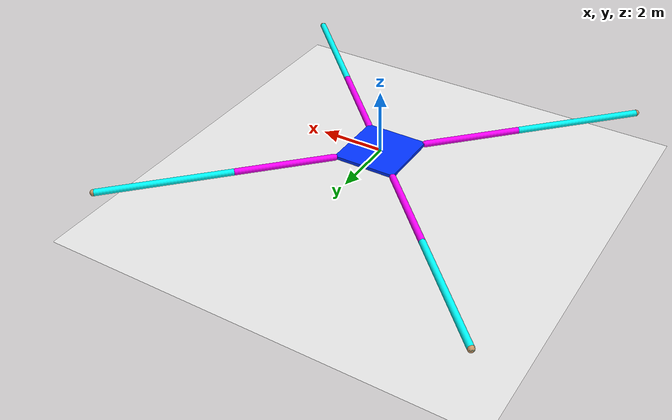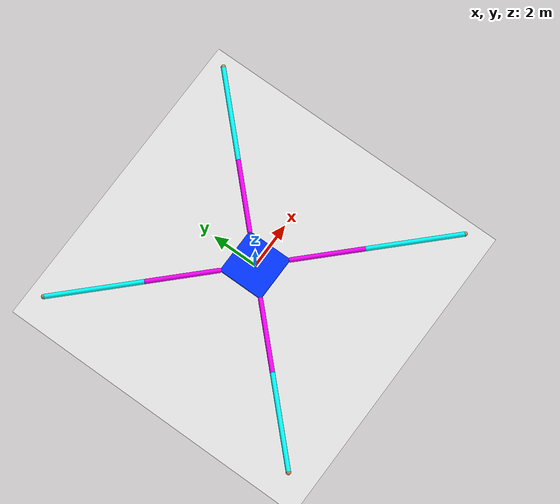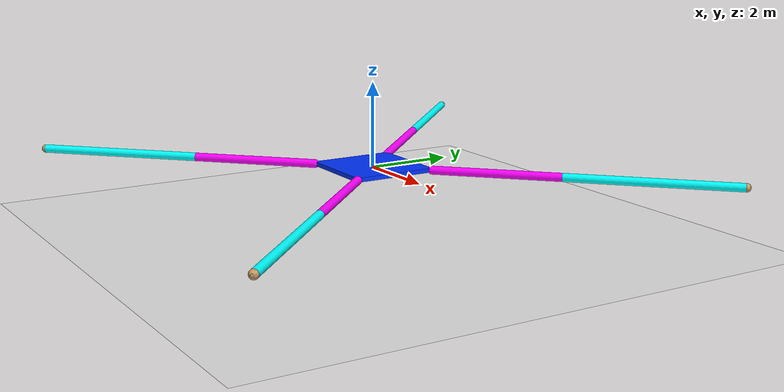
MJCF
<mujoco model="example">
  <default>
    <geom rgba=".8 .6 .4 1"/>
  </default>

  <asset>
    <texture type="skybox" builtin="gradient" rgb1="1 1 1" rgb2=".6 .8 1" width="256" height="256"/>
  </asset>

  <worldbody>
    <light pos="0 1 1" dir="0 -1 -1" diffuse="1 1 1"/>

    <body pos = "0 0 -1.5">
      <geom type="plane" size="10 10 0.1" rgba="0.9 0.9 0.9 1" friction = "2"/>
    </body>

    <!-- Spider Body -->
    <body pos = "0 0 0">
      <joint type = "free"/>
      <geom type = "box" size = "1 1 0.05" rgba = "0 0.2 1 1" mass = "0.4"/>

      <!-- Front Right Leg-->
      <body pos = "1 1 0" axisangle = "0 0 1 -45">
        <joint axis = "0 0 1" range = "-135 135" name = "FR z" damping = "20"/>
        <joint axis = "1 0 0" range = "-135 170" name = "FR shoulder" damping = "20"/>
        <geom type = "capsule" size = "0.1" fromto ="0 0 0  0 3 0" rgba = "1 0 1 1" mass = "0.05"/>
        <body pos = "0 3 0" axisangle = "0 0 1 90">
          <joint axis = "0 -1 0" range = "-170 170" name = "FR knee" damping = "20"/>
          <geom type = "capsule" size = "0.1" fromto ="0 0 0  4 0 0" rgba = "0 1 1 1" mass = "0.03" friction = "3.5"/>
          <body pos = "4 0 0"  name =  "FR foot" >
            <geom type = "sphere" size = "0.101" mass = "0" contype="0" conaffinity="0"/>
          </body>
        </body>
      </body>

      <!-- Front Left Leg-->
      <body pos = "-1 1 0" axisangle = "0 0 1 45">
        <joint axis = "0 0 1" range = "-135 135" name = "FL z" damping = "20"/>
        <joint axis = "1 0 0" range = "-135 170" name = "FL shoulder" damping = "20"/>
        <geom type = "capsule" size = "0.1" fromto ="0 0 0  0 3 0" rgba = "1 0 1 1" mass = "0.05"/>
        <body pos = "0 3 0" axisangle = "0 0 1 90">
          <joint axis = "0 -1 0" range = "-170 170" name = "FL knee" damping = "20"/>
          <geom type = "capsule" size = "0.1" fromto ="0 0 0  4 0 0" rgba = "0 1 1 1" mass = "0.03" friction = "3.5"/>
          <body pos = "4 0 0"  name =  "FL foot" >
            <geom type = "sphere" size = "0.101" mass = "0" contype="0" conaffinity="0"/>
          </body>
        </body>
      </body>

      <!-- Back Left Leg-->
      <body pos = "-1 -1 0" axisangle = "0 0 1 -45">
        <joint axis = "0 0 1"  range = "-135 135" name = "BL z" damping = "20"/>
        <joint axis = "-1 0 0" range = "-135 170" name = "BL shoulder" damping = "20"/>
        <geom type = "capsule" size = "0.1" fromto ="0 0 0  0 -3 0" rgba = "1 0 1 1" mass = "0.05"/>
        <body pos = "0 -3 0" axisangle = "0 0 1 -90">
          <joint axis = "0 -1 0" range = "-170 170" name = "BL knee" damping = "20"/>
          <geom type = "capsule" size = "0.1" fromto ="0 0 0  4 0 0" rgba = "0 1 1 1" mass = "0.03" friction = "3.5"/>
          <body pos = "4 0 0"  name =  "BL foot" >
            <geom type = "sphere" size = "0.101" mass = "0" contype="0" conaffinity="0"/>
          </body>
        </body>
      </body>

      <!-- Back Right Leg-->
      <body pos = "1 -1 0" axisangle = "0 0 1 45">
        <joint axis = "0 0 1"  range = "-135 135" name = "BR z" damping = "20"/>
        <joint axis = "-1 0 0" range = "-135 170" name = "BR shoulder" damping = "20"/>
        <geom type = "capsule" size = "0.1" fromto ="0 0 0  0 -3 0" rgba = "1 0 1 1" mass = "0.05"/>
        <body pos = "0 -3 0" axisangle = "0 0 1 -90">
          <joint axis = "0 -1 0" range = "-170 170" name = "BR knee" damping = "20"/>
          <geom type = "capsule" size = "0.1" fromto ="0 0 0  4 0 0" rgba = "0 1 1 1" mass = "0.03" friction = "3.5"/>
          <body pos = "4 0 0"  name =  "BR foot" >
            <geom type = "sphere" size = "0.101" mass = "0" contype="0" conaffinity="0"/>
          </body>
        </body>
      </body>

    </body>

  </worldbody>

<keyframe>
  <key
  time="0"
  qpos="0 0 0 1 0 0 0 0 1.14208 -2.52352 0 1.14208 -2.52352  0 1.14208 -2.52352  0 1.14208 -2.52352 "
  qvel="0 0 0 0 0 0 0 0 0 0 0 0 0 0 0 0 0 0"
  name="start_pose"
  />

</keyframe>

<actuator>
  <!-- Front Right Leg -->
  <position joint="FR z" ctrlrange="-2.35 2.35"           kp="100"/>
  <position joint="FR shoulder" ctrlrange="-2.35 2.95"    kp="100"/>
  <position joint="FR knee" ctrlrange="-2.95 2.95"        kp="100"/>

  <!-- Front Left Leg -->
  <position joint="FL z" ctrlrange="-2.35 2.35"           kp="100"/>
  <position joint="FL shoulder" ctrlrange="-2.35 2.95"    kp="100"/>
  <position joint="FL knee" ctrlrange="-2.95 2.95"        kp="100"/>

  <!-- Back Left Leg -->
  <position  joint="BL z" ctrlrange="-2.35 2.35"          kp="100"/>
  <position  joint="BL shoulder" ctrlrange="-2.35 2.95"   kp="100"/>
  <position  joint="BL knee" ctrlrange="-2.95 2.95"       kp="100"/>

  <!-- Back Right Leg -->
  <position joint="BR z" ctrlrange="-2.35 2.35"           kp="100"/>
  <position joint="BR shoulder" ctrlrange="-2.35 2.95"    kp="100"/>
  <position joint="BR knee" ctrlrange="-2.95 2.95"        kp="100"/>

</actuator>

</mujoco>
